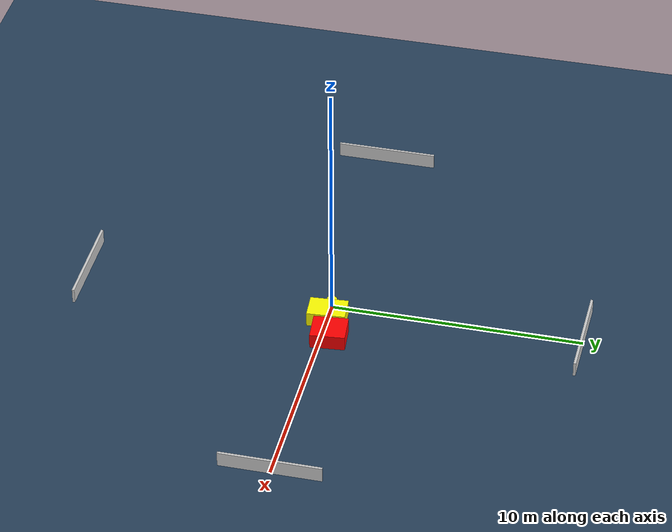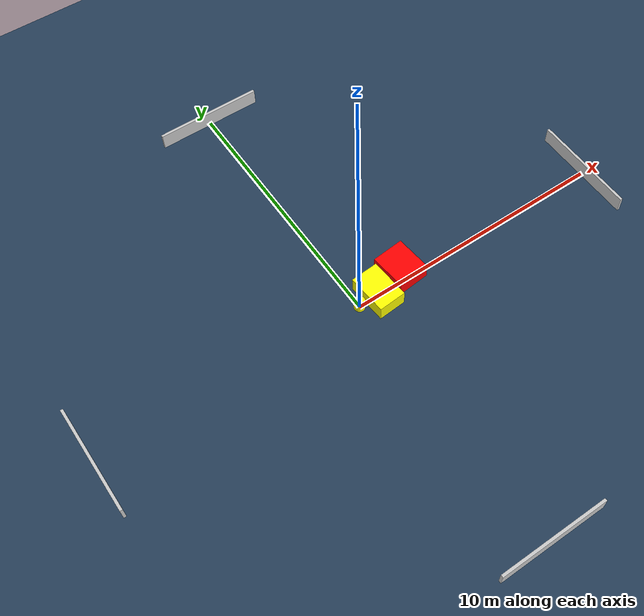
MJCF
<?xml version="1.0" ?>
<mujoco model="generated_environment">
  <option timestep="0.01" integrator="RK4" cone="elliptic"/>
  <default>
    <geom density="1"/>
  </default>
  <asset>
    <texture builtin="gradient" height="3072" name="skybox" rgb1="0.3 0.5 0.7" rgb2="0 0 0" type="skybox" width="512"/>
    <texture builtin="checker" height="300" name="groundplane" rgb1="0.2 0.3 0.4" rgb2="0.1 0.2 0.3" type="2d" width="300"/>
    <material name="groundplane" reflectance="0.2" texrepeat="5 5" texture="groundplane"/>
  </asset>
  <worldbody>
    <light dir="0 0 -1" directional="true" pos="0 0 1.5"/>
    <geom condim="3" friction="0.5 0.005 0.001" material="groundplane" name="floor" pos="0 0 0" size="0 0 0.05" type="plane"/>
    <body name="walls">
      <geom name="wall_1" condim="4" pos="-10.0 0.0 0.3" rgba="0.800000011920929 0.800000011920929 0.800000011920929 1.0" size="0.05 2.0 0.3" type="box"/>
      <geom name="wall_2" condim="4" pos="10.0 0.0 0.3" rgba="0.800000011920929 0.800000011920929 0.800000011920929 1.0" size="0.05 2.0 0.3" type="box"/>
      <geom name="wall_3" condim="4" pos="0.0 -10.0 0.3" rgba="0.800000011920929 0.800000011920929 0.800000011920929 1.0" size="2.0 0.05 0.3" type="box"/>
      <geom name="wall_4" condim="4" pos="0.0 10.0 0.3" rgba="0.800000011920929 0.800000011920929 0.800000011920929 1.0" size="2.0 0.05 0.3" type="box"/>
    </body>
    <body name="robot">
      <joint name="joint_x" type="slide" pos="0 0 0" axis="1 0 0"/>
      <joint name="joint_y" type="slide" pos="0 0 0" axis="0 1 0"/>
      <geom name="robot" type="cylinder" pos="0.0 0.0 0.2" size="0.2 0.2 0.0" mass="5.0" friction="1.0 0.005 0.0001" condim="4" rgba="1.0 1.0 0.0 1.0"/>
    </body>
    <body name="obstacle_1_movable">
      <geom name="obstacle_1_movable" condim="4" pos="0.7783004010923772 0.0065769404041082806 0.3" euler="0 0 94.24327104017388" friction="0.0 0.005 0.001" rgba="1.0 1.0 0.0 1.0" size="0.7598324482290657 0.5174455915528631 0.3" type="box" mass="0.1"/>
      <joint type="free"/>
    </body>
    <body name="obstacle_2_static">
      <geom name="obstacle_2_static" condim="4" pos="1.958326790232628 0.34643760699349496 0.3" euler="0 0 95.4792180932252" friction="0.0 0.005 0.001" rgba="1.0 0.0 0.0 1.0" size="0.6897303508042317 0.603037704257627 0.3" type="box"/>
    </body>
  </worldbody>
  <actuator>
    <motor name="actuator_x" joint="joint_x" gear="1" ctrlrange="-1 1"/>
    <motor name="actuator_y" joint="joint_y" gear="1" ctrlrange="-1 1"/>
  </actuator>
</mujoco>
